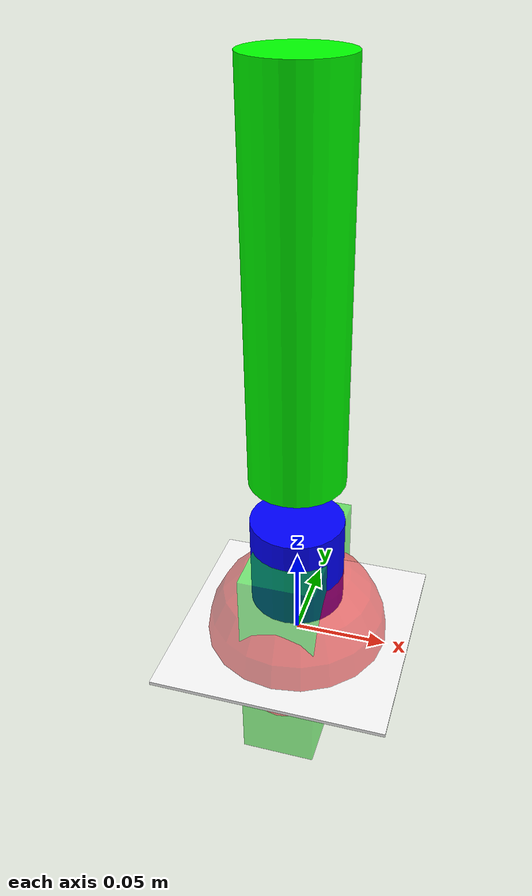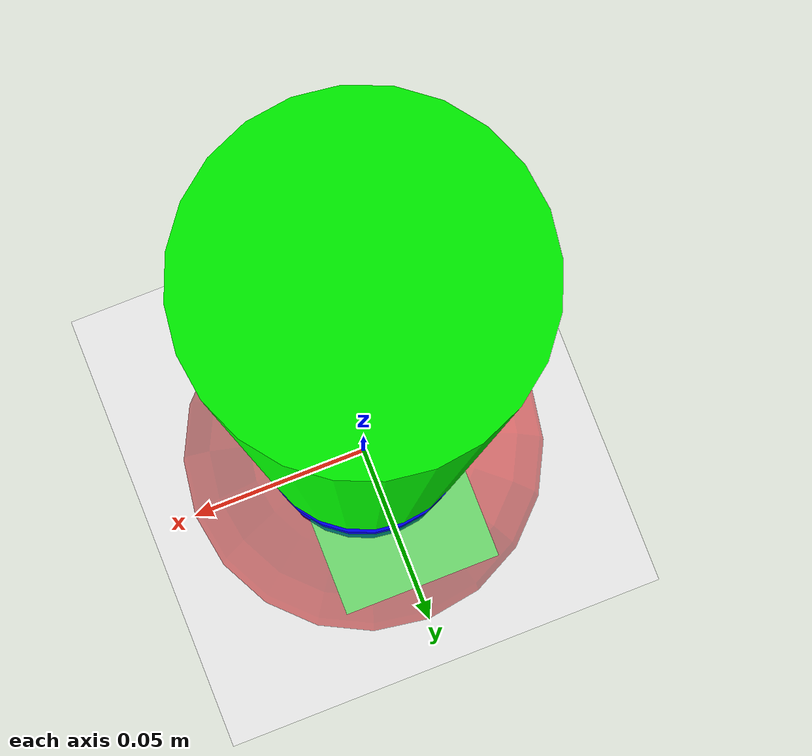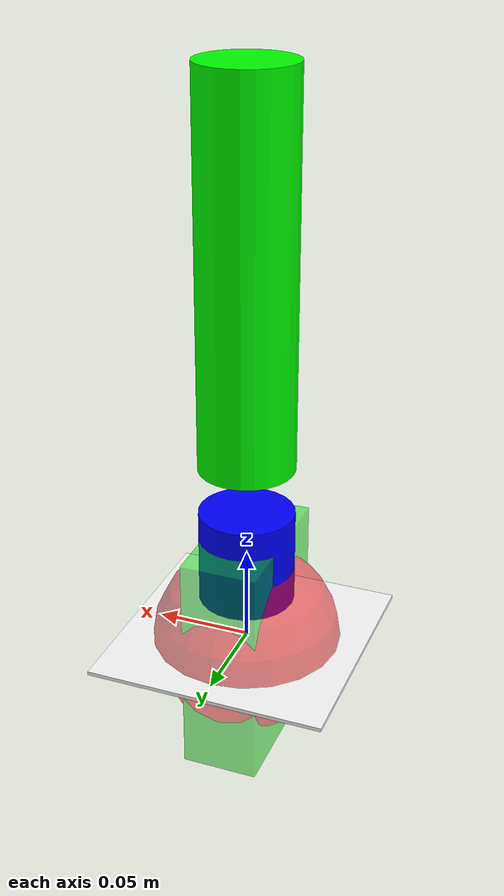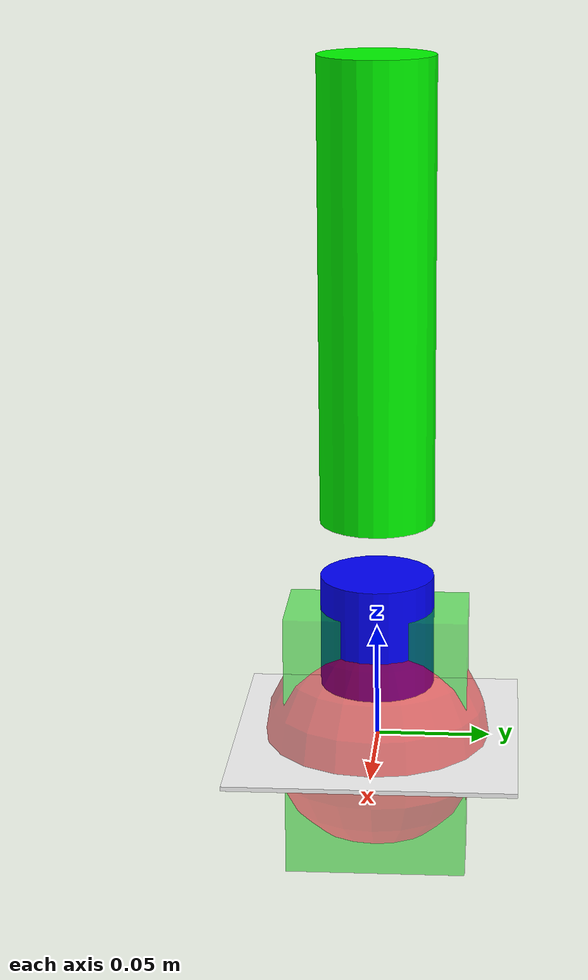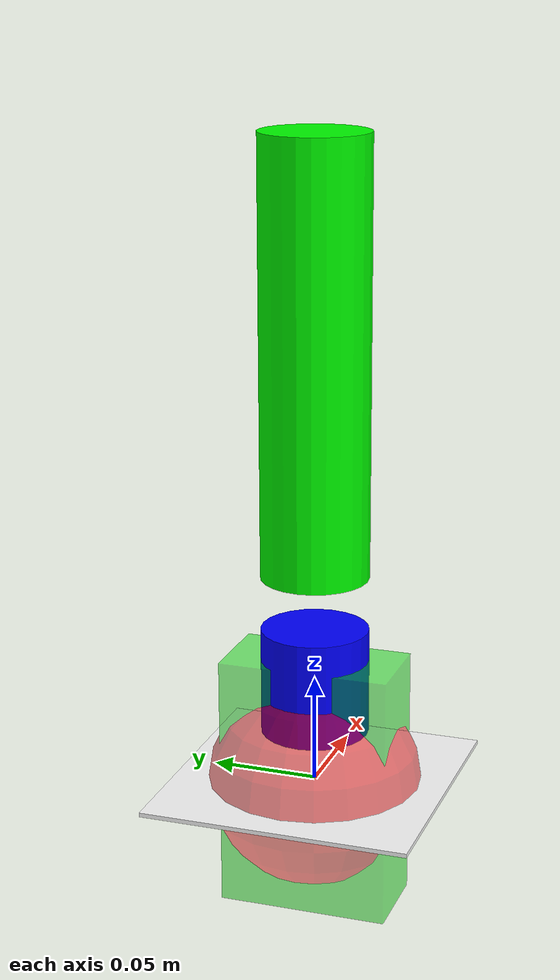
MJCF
<mujoco model="onelink">

    <custom>
        <numeric name="START_ANGLES" data="0.0"/>
    </custom>

    <contact>
        <exclude body1="hand" body2="EE"/>
        <exclude body1="hand" body2="base_link"/>
        <exclude body1="hand" body2="link1"/>

        <exclude body1="target" body2="EE"/>
        <exclude body1="target" body2="base_link"/>
        <exclude body1="target" body2="link1"/>
    </contact>

    <worldbody>
        <body name="hand" pos="0 0 0" mocap="true">
            <geom type="box" size=".02 .04 .06" rgba="0 .9 0 .5" contype="2"/>
            <inertial pos="0 0 0" mass="0" diaginertia="0 0 0" />
        </body>
        <body name="target" pos="0 0 0" mocap="true">
            <geom type="sphere" size="0.05" rgba=".9 0 0 .5"/>
            <inertial pos="0 0 0" mass="0" diaginertia="0 0 0" />
        </body>

        <body name="floor" pos="0 0 0" mocap="true">
            <geom type="box" size="1 1 0.001" rgba="0.99 0.99 0.99 1" contype="2"/>
            <inertial pos="0 0 0" mass="0" diaginertia="0 0 0" />
        </body>

        <light pos="0 1 1" dir="0 -1 -1" diffuse="1 1 1"/>

        <body name="base_link" pos="0 0 0.05">
            <geom name="link0" type="cylinder" pos="0 0 0" size="0.025 0.025" rgba="0 0 1 0.9"/>
            <inertial pos="0 0 0" mass="0" diaginertia="0 0 0" />

            <body name="link1" pos="0 0 0.05">
                <joint name='joint0' type="ball" pos="0 0 0"/>
                <inertial pos="0 0 0.1" mass="2" diaginertia="0.226891 0.226891 0.0151074" />
                <geom name="link1" type="cylinder" pos="0 0 0.1" size="0.025 0.1" rgba="0 1 0 0.9"/>

                <body name="EE" pos="0 0 .4">
                    <inertial pos="0 0 0" mass="0" diaginertia="0 0 0" />
                </body>

            </body>

        </body>

    </worldbody>

    <actuator>
        <!-- the order for actuators of the ball joint is important -->
        <motor name="joint0_motor0" joint="joint0" gear="1 0 0 0 0 0"/>
        <motor name="joint0_motor1" joint="joint0" gear="0 1 0 0 0 0"/>
        <motor name="joint0_motor2" joint="joint0" gear="0 0 1 0 0 0"/>
    </actuator>

</mujoco>
